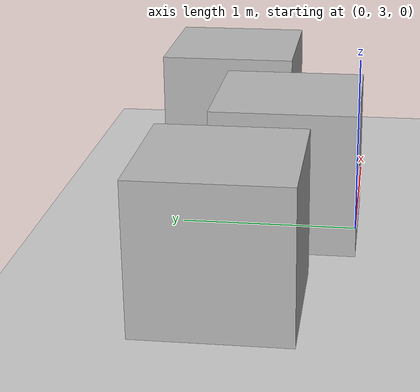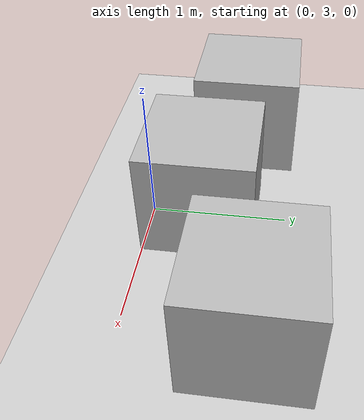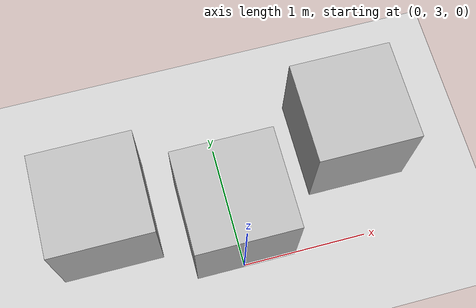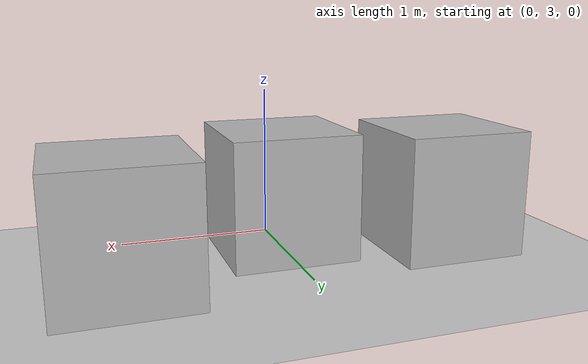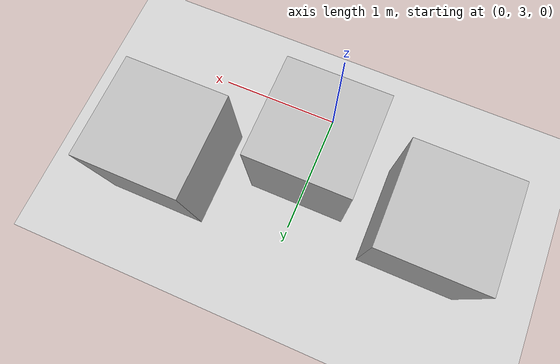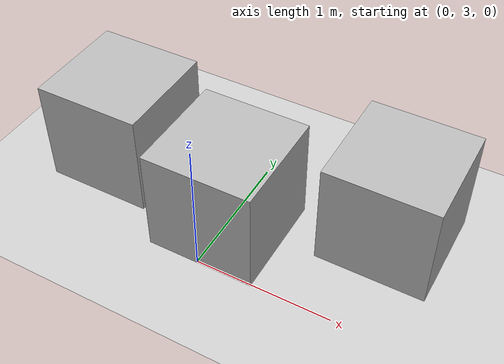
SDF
<sdf version="1.7">
 <world name="default">
  <light name="sun" type="directional">
   <pose>0 0 10 0 -0 0</pose>
   <diffuse>0.8 0.8 0.8 1</diffuse>
   <specular>0.2 0.2 0.2 1</specular>
   <attenuation>
    <range>1000</range>
    <constant>0.9</constant>
    <linear>0.01</linear>
    <quadratic>0.001</quadratic>
   </attenuation>
   <direction>-0.5 0.1 -0.9</direction>
   <spot><inner_angle>0</inner_angle><outer_angle>0</outer_angle><falloff>0</falloff></spot>
  </light>
  <model name="ground_plane">
   <static>1</static>
   <link name="link">
    <collision name="collision">
     <geometry><plane><normal>0 0 1</normal><size>100 100</size></plane></geometry>
     <surface>
      <contact><collide_bitmask>65535</collide_bitmask></contact>
      <friction><ode><mu>100</mu><mu2>50</mu2></ode></friction>
     </surface>
    </collision>
    <visual name="visual">
     <cast_shadows>0</cast_shadows>
     <geometry><plane><normal>0 0 1</normal><size>100 100</size></plane></geometry>
     <material>
      <script><uri>file://media/materials/scripts/gazebo.material</uri><name>Gazebo/Grey</name></script>
     </material>
    </visual>
   </link>
  </model>
  <gravity>0 0 -9.8</gravity>
  <magnetic_field>6e-06 2.3e-05 -4.2e-05</magnetic_field>
  <atmosphere type="adiabatic"/>
  <physics type="ode">
   <max_step_size>0.001</max_step_size>
   <real_time_factor>1</real_time_factor>
   <real_time_update_rate>1000</real_time_update_rate>
  </physics>
  <scene><ambient>0.4 0.4 0.4 1</ambient><background>0.7 0.7 0.7 1</background><shadows>1</shadows></scene>
  <audio><device>default</device></audio>
  <spherical_coordinates>
   <surface_model>EARTH_WGS84</surface_model>
   <latitude_deg>0</latitude_deg>
   <longitude_deg>0</longitude_deg>
   <elevation>0</elevation>
   <heading_deg>0</heading_deg>
  </spherical_coordinates>
  <model name="number1">
   <pose>-1.00282 3.62851 0.4 0 -0 0</pose>
   <static>1</static>
   <link name="link">
    <visual name="visual">
     <geometry><mesh><uri>model://number1/meshes/number.dae</uri></mesh></geometry>
     <material>
      <script>
       <uri>model://number1/materials/scripts</uri>
       <uri>model://number1/materials/textures</uri>
       <name>Number/One</name>
      </script>
     </material>
    </visual>
   </link>
  </model>
  <model name="number2">
   <pose>0.017928 3.39058 0.4 0 -0 0</pose>
   <static>1</static>
   <link name="link">
    <visual name="visual">
     <geometry><mesh><uri>model://number1/meshes/number.dae</uri></mesh></geometry>
     <material>
      <script>
       <uri>model://number2/materials/scripts</uri>
       <uri>model://number2/materials/textures</uri>
       <name>Number/Two</name>
      </script>
     </material>
    </visual>
   </link>
  </model>
  <model name="number3">
   <pose>1.07014 3.83452 0.4 0 -0 0</pose>
   <static>1</static>
   <link name="link">
    <visual name="visual">
     <geometry><mesh><uri>model://number1/meshes/number.dae</uri></mesh></geometry>
     <material>
      <script>
       <uri>model://number3/materials/scripts</uri>
       <uri>model://number3/materials/textures</uri>
       <name>Number/Three</name>
      </script>
     </material>
    </visual>
   </link>
  </model>
 </world>
</sdf>
